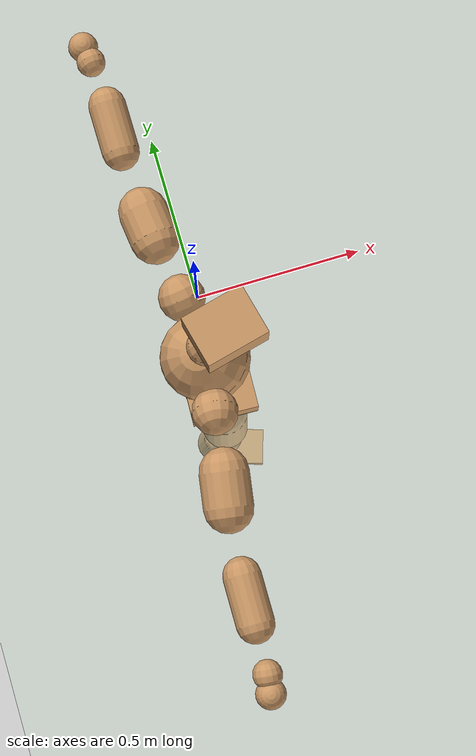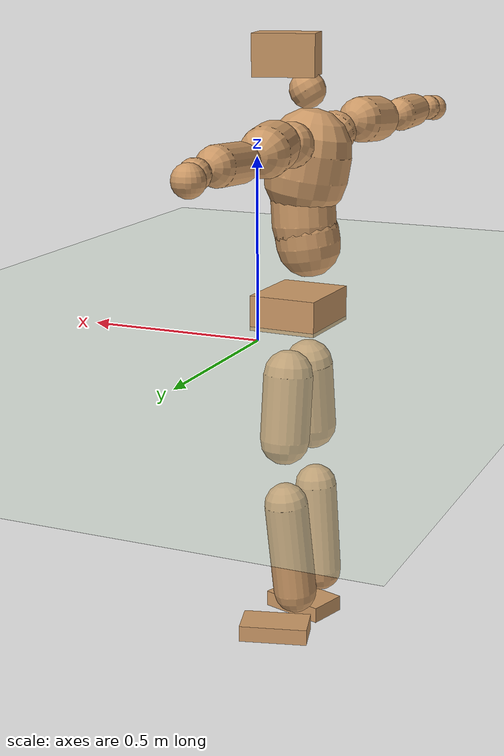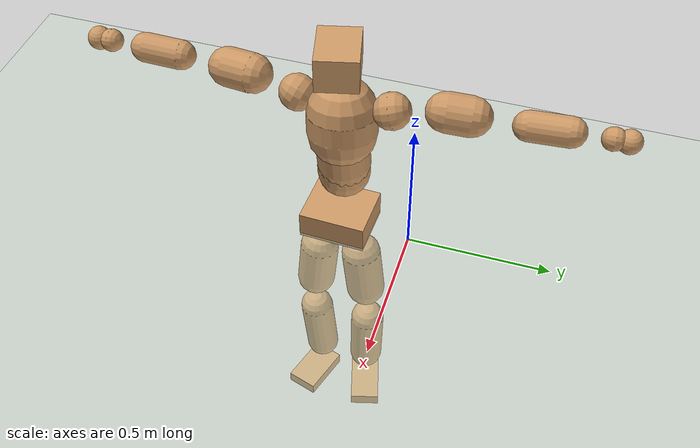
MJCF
<mujoco model="humanoid">
  <compiler coordinate="local" angle="radian"/>
  <default>
    <joint damping="0.0" armature="0.01" stiffness="0.0" limited="true"/>
    <geom conaffinity="1" condim="3" contype="7" margin="0.001" rgba="0.8 0.6 .4 1"/>
  </default>
  <asset>
    <texture type="skybox" builtin="gradient" rgb1=".4 .5 .6" rgb2="0 0 0" width="100" height="100"/>
    <texture builtin="flat" height="1278" mark="cross" markrgb="1 1 1" name="texgeom" random="0.01" rgb1="0.8 0.6 0.4" rgb2="0.8 0.6 0.4" type="cube" width="127"/>
    <texture builtin="checker" height="100" name="texplane" rgb1="0 0 0" rgb2="0.8 0.8 0.8" type="2d" width="100"/>
    <material name="MatPlane" reflectance="0.5" shininess="1" specular="1" texrepeat="60 60" texture="texplane"/>
    <material name="geom" texture="texgeom" texuniform="true"/>
  </asset>
  <worldbody>
    <light cutoff="100" diffuse="1 1 1" dir="-0 0 -1.3" directional="true" exponent="1" pos="0 0 1.3" specular=".1 .1 .1"/>
    <geom conaffinity="1" condim="3" name="floor" pos="0 0 0" rgba="0.8 0.9 0.8 1" size="100 100 .2" type="plane" material="MatPlane"/>
    <body name="Pelvis" pos="-0.0029 -0.2544 0.0449">
      <freejoint name="Pelvis"/>
      <geom type="box" contype="1" conaffinity="1" density="5359.374891" pos="-0.0127 0.0005 -0.0083" size="0.0978 0.1171 0.0501" quat="0.9998 0.0000 0.0000 -0.0190" name="Pelvis"/>
      <body name="L_Hip" pos="-0.0144 0.0673 -0.0856">
        <joint name="L_Hip_x" type="hinge" pos="0 0 0" axis="1 0 0" stiffness="1600" damping="160" armature="0.02" range="-180.0000 180.0000"/>
        <joint name="L_Hip_y" type="hinge" pos="0 0 0" axis="0 1 0" stiffness="1600" damping="160" armature="0.02" range="-180.0000 180.0000"/>
        <joint name="L_Hip_z" type="hinge" pos="0 0 0" axis="0 0 1" stiffness="1600" damping="160" armature="0.02" range="-180.0000 180.0000"/>
        <geom type="capsule" contype="1" conaffinity="1" density="2040.816327" size="0.0709" fromto="0.0010 0.0107 -0.1004 0.0029 0.0311 -0.2905" name="L_Hip"/>
        <body name="L_Knee" pos="0.0039 0.0419 -0.3908">
          <joint name="L_Knee_x" type="hinge" pos="0 0 0" axis="1 0 0" stiffness="1600" damping="160" armature="0.02" range="-180.0000 180.0000"/>
          <joint name="L_Knee_y" type="hinge" pos="0 0 0" axis="0 1 0" stiffness="1600" damping="160" armature="0.02" range="-180.0000 180.0000"/>
          <joint name="L_Knee_z" type="hinge" pos="0 0 0" axis="0 0 1" stiffness="1600" damping="160" armature="0.02" range="-180.0000 180.0000"/>
          <geom type="capsule" contype="1" conaffinity="1" density="1234.567901" size="0.0628" fromto="-0.0086 -0.0037 -0.0924 -0.0338 -0.0146 -0.3634" name="L_Knee"/>
          <body name="L_Ankle" pos="-0.0424 -0.0183 -0.4558">
            <joint name="L_Ankle_x" type="hinge" pos="0 0 0" axis="1 0 0" stiffness="1600" damping="160" armature="0.02" range="-180.0000 180.0000"/>
            <joint name="L_Ankle_y" type="hinge" pos="0 0 0" axis="0 1 0" stiffness="1600" damping="160" armature="0.02" range="-180.0000 180.0000"/>
            <joint name="L_Ankle_z" type="hinge" pos="0 0 0" axis="0 0 1" stiffness="1600" damping="160" armature="0.02" range="-180.0000 180.0000"/>
            <geom type="box" contype="1" conaffinity="1" density="999.999994" pos="0.0664 0.0182 -0.0320" size="0.0998 0.0551 0.0237" quat="0.9911 0.0000 0.0000 0.1334" name="L_Ankle"/>
            <body name="L_Toe" pos="0.1328 0.0364 -0.0639">
              <joint name="L_Toe_x" type="hinge" pos="0 0 0" axis="1 0 0" stiffness="1000" damping="100" armature="0.02" range="-180.0000 180.0000"/>
              <joint name="L_Toe_y" type="hinge" pos="0 0 0" axis="0 1 0" stiffness="1000" damping="100" armature="0.02" range="-180.0000 180.0000"/>
              <joint name="L_Toe_z" type="hinge" pos="0 0 0" axis="0 0 1" stiffness="1000" damping="100" armature="0.02" range="-180.0000 180.0000"/>
              <geom type="box" contype="1" conaffinity="1" density="8829210.378684" pos="0.0000 0.0000 0.0308" size="0.0012 0.0027 0.0011" quat="0.9904 0.0000 0.0000 0.1384" name="L_Toe"/>
            </body>
          </body>
        </body>
      </body>
      <body name="R_Hip" pos="-0.0099 -0.0693 -0.0932">
        <joint name="R_Hip_x" type="hinge" pos="0 0 0" axis="1 0 0" stiffness="1600" damping="160" armature="0.02" range="-180.0000 180.0000"/>
        <joint name="R_Hip_y" type="hinge" pos="0 0 0" axis="0 1 0" stiffness="1600" damping="160" armature="0.02" range="-180.0000 180.0000"/>
        <joint name="R_Hip_z" type="hinge" pos="0 0 0" axis="0 0 1" stiffness="1600" damping="160" armature="0.02" range="-180.0000 180.0000"/>
        <geom type="capsule" contype="1" conaffinity="1" density="2040.816327" size="0.0704" fromto="-0.0024 -0.0104 -0.0998 -0.0072 -0.0308 -0.2946" name="R_Hip"/>
        <body name="R_Knee" pos="-0.0096 -0.0412 -0.3945">
          <joint name="R_Knee_x" type="hinge" pos="0 0 0" axis="1 0 0" stiffness="1600" damping="160" armature="0.02" range="-180.0000 180.0000"/>
          <joint name="R_Knee_y" type="hinge" pos="0 0 0" axis="0 1 0" stiffness="1600" damping="160" armature="0.02" range="-180.0000 180.0000"/>
          <joint name="R_Knee_z" type="hinge" pos="0 0 0" axis="0 0 1" stiffness="1600" damping="160" armature="0.02" range="-180.0000 180.0000"/>
          <geom type="capsule" contype="1" conaffinity="1" density="1234.567901" size="0.0623" fromto="-0.0079 0.0044 -0.0919 -0.0306 0.0171 -0.3579" name="R_Knee"/>
          <body name="R_Ankle" pos="-0.0384 0.0215 -0.4497">
            <joint name="R_Ankle_x" type="hinge" pos="0 0 0" axis="1 0 0" stiffness="1600" damping="160" armature="0.02" range="-180.0000 180.0000"/>
            <joint name="R_Ankle_y" type="hinge" pos="0 0 0" axis="0 1 0" stiffness="1600" damping="160" armature="0.02" range="-180.0000 180.0000"/>
            <joint name="R_Ankle_z" type="hinge" pos="0 0 0" axis="0 0 1" stiffness="1600" damping="160" armature="0.02" range="-180.0000 180.0000"/>
            <geom type="box" contype="1" conaffinity="1" density="1000.000036" pos="0.0700 -0.0216 -0.0331" size="0.0969 0.059 0.0232" quat="0.9888 0.0000 0.0000 -0.1495" name="R_Ankle"/>
            <body name="R_Toe" pos="0.1399 -0.0433 -0.0663">
              <joint name="R_Toe_x" type="hinge" pos="0 0 0" axis="1 0 0" stiffness="1000" damping="100" armature="0.02" range="-180.0000 180.0000"/>
              <joint name="R_Toe_y" type="hinge" pos="0 0 0" axis="0 1 0" stiffness="1000" damping="100" armature="0.02" range="-180.0000 180.0000"/>
              <joint name="R_Toe_z" type="hinge" pos="0 0 0" axis="0 0 1" stiffness="1000" damping="100" armature="0.02" range="-180.0000 180.0000"/>
              <geom type="box" contype="1" conaffinity="1" density="8188718.081431" pos="0.0000 0.0000 0.0326" size="0.0013 0.0028 0.0011" quat="0.9900 0.0000 0.0000 -0.1411" name="R_Toe"/>
            </body>
          </body>
        </body>
      </body>
      <body name="Torso" pos="-0.0518 0.0049 0.1289">
        <joint name="Torso_x" type="hinge" pos="0 0 0" axis="1 0 0" stiffness="2000" damping="200" armature="0.02" range="-180.0000 180.0000"/>
        <joint name="Torso_y" type="hinge" pos="0 0 0" axis="0 1 0" stiffness="2000" damping="200" armature="0.02" range="-180.0000 180.0000"/>
        <joint name="Torso_z" type="hinge" pos="0 0 0" axis="0 0 1" stiffness="2000" damping="200" armature="0.02" range="-180.0000 180.0000"/>
        <geom type="capsule" contype="1" conaffinity="1" density="2040.816327" size="0.0909" fromto="0.0145 0.0026 0.0897 0.0079 0.0014 0.0492" name="Torso"/>
        <body name="Spine" pos="0.0224 0.004 0.1388">
          <joint name="Spine_x" type="hinge" pos="0 0 0" axis="1 0 0" stiffness="2000" damping="200" armature="0.02" range="-180.0000 180.0000"/>
          <joint name="Spine_y" type="hinge" pos="0 0 0" axis="0 1 0" stiffness="2000" damping="200" armature="0.02" range="-180.0000 180.0000"/>
          <joint name="Spine_z" type="hinge" pos="0 0 0" axis="0 0 1" stiffness="2000" damping="200" armature="0.02" range="-180.0000 180.0000"/>
          <geom type="capsule" contype="1" conaffinity="1" density="2040.816327" size="0.0915" fromto="0.0071 -0.0040 0.0911 -0.0026 0.0015 -0.0335" name="Spine"/>
          <body name="Chest" pos="0.0045 -0.0025 0.0576">
            <joint name="Chest_x" type="hinge" pos="0 0 0" axis="1 0 0" stiffness="2000" damping="200" armature="0.02" range="-180.0000 180.0000"/>
            <joint name="Chest_y" type="hinge" pos="0 0 0" axis="0 1 0" stiffness="2000" damping="200" armature="0.02" range="-180.0000 180.0000"/>
            <joint name="Chest_z" type="hinge" pos="0 0 0" axis="0 0 1" stiffness="2000" damping="200" armature="0.02" range="-180.0000 180.0000"/>
            <geom type="capsule" contype="1" conaffinity="1" density="2040.816327" size="0.1185" fromto="-0.0185 -0.0061 0.1168 -0.0071 -0.0023 0.0448" name="Chest"/>
            <body name="Neck" pos="-0.0369 -0.0149 0.2358">
              <joint name="Neck_x" type="hinge" pos="0 0 0" axis="1 0 0" stiffness="1000" damping="100" armature="0.02" range="-180.0000 180.0000"/>
              <joint name="Neck_y" type="hinge" pos="0 0 0" axis="0 1 0" stiffness="1000" damping="100" armature="0.02" range="-180.0000 180.0000"/>
              <joint name="Neck_z" type="hinge" pos="0 0 0" axis="0 0 1" stiffness="1000" damping="100" armature="0.02" range="-180.0000 180.0000"/>
              <geom type="capsule" contype="1" conaffinity="1" density="1000" size="0.0507" fromto="0.0271 0.0059 0.0464 0.0281 0.0061 0.0481" name="Neck"/>
              <body name="Head" pos="0.0552 0.0119 0.0945">
                <joint name="Head_x" type="hinge" pos="0 0 0" axis="1 0 0" stiffness="1000" damping="100" armature="0.02" range="-180.0000 180.0000"/>
                <joint name="Head_y" type="hinge" pos="0 0 0" axis="0 1 0" stiffness="1000" damping="100" armature="0.02" range="-180.0000 180.0000"/>
                <joint name="Head_z" type="hinge" pos="0 0 0" axis="0 0 1" stiffness="1000" damping="100" armature="0.02" range="-180.0000 180.0000"/>
                <geom type="box" contype="1" conaffinity="1" density="2249.999945" pos="0.0286 0.0070 0.0482" size="0.0867 0.0696 0.0584" quat="0.9929 0.0000 0.0000 0.1192" name="Head"/>
              </body>
            </body>
            <body name="L_Thorax" pos="-0.0161 0.0846 0.1259">
              <joint name="L_Thorax_x" type="hinge" pos="0 0 0" axis="1 0 0" stiffness="1000" damping="100" armature="0.02" range="-180.0000 180.0000"/>
              <joint name="L_Thorax_y" type="hinge" pos="0 0 0" axis="0 1 0" stiffness="1000" damping="100" armature="0.02" range="-180.0000 180.0000"/>
              <joint name="L_Thorax_z" type="hinge" pos="0 0 0" axis="0 0 1" stiffness="1000" damping="100" armature="0.02" range="-180.0000 180.0000"/>
              <geom type="capsule" contype="1" conaffinity="1" density="1000" size="0.0632" fromto="-0.0135 0.0714 0.0251 -0.0138 0.0733 0.0257" name="L_Thorax"/>
              <body name="L_Shoulder" pos="-0.0273 0.1446 0.0508">
                <joint name="L_Shoulder_x" type="hinge" pos="0 0 0" axis="1 0 0" stiffness="1000" damping="100" armature="0.02" range="-720.0000 720.0000"/>
                <joint name="L_Shoulder_y" type="hinge" pos="0 0 0" axis="0 1 0" stiffness="1000" damping="100" armature="0.02" range="-720.0000 720.0000"/>
                <joint name="L_Shoulder_z" type="hinge" pos="0 0 0" axis="0 0 1" stiffness="1000" damping="100" armature="0.02" range="-720.0000 720.0000"/>
                <geom type="capsule" contype="1" conaffinity="1" density="1000" size="0.0669" fromto="-0.0115 0.0960 -0.0070 -0.0215 0.1794 -0.0132" name="L_Shoulder"/>
                <body name="L_Elbow" pos="-0.033 0.2754 -0.0202">
                  <joint name="L_Elbow_x" type="hinge" pos="0 0 0" axis="1 0 0" stiffness="1000" damping="100" armature="0.02" range="-720.0000 720.0000"/>
                  <joint name="L_Elbow_y" type="hinge" pos="0 0 0" axis="0 1 0" stiffness="1000" damping="100" armature="0.02" range="-720.0000 720.0000"/>
                  <joint name="L_Elbow_z" type="hinge" pos="0 0 0" axis="0 0 1" stiffness="1000" damping="100" armature="0.02" range="-720.0000 720.0000"/>
                  <geom type="capsule" contype="1" conaffinity="1" density="1000" size="0.0507" fromto="-0.0005 0.0805 0.0050 -0.0012 0.2136 0.0133" name="L_Elbow"/>
                  <body name="L_Wrist" pos="-0.0017 0.2941 0.0183">
                    <joint name="L_Wrist_x" type="hinge" pos="0 0 0" axis="1 0 0" stiffness="600" damping="60" armature="0.02" range="-180.0000 180.0000"/>
                    <joint name="L_Wrist_y" type="hinge" pos="0 0 0" axis="0 1 0" stiffness="600" damping="60" armature="0.02" range="-180.0000 180.0000"/>
                    <joint name="L_Wrist_z" type="hinge" pos="0 0 0" axis="0 0 1" stiffness="600" damping="60" armature="0.02" range="-180.0000 180.0000"/>
                    <geom type="capsule" contype="1" conaffinity="1" density="1000" size="0.0389" fromto="-0.0086 0.0481 -0.0061 -0.0089 0.0501 -0.0063" name="L_Wrist"/>
                    <body name="L_Hand" pos="-0.0175 0.0982 -0.0124">
                      <joint name="L_Hand_x" type="hinge" pos="0 0 0" axis="1 0 0" stiffness="600" damping="60" armature="0.02" range="-180.0000 180.0000"/>
                      <joint name="L_Hand_y" type="hinge" pos="0 0 0" axis="0 1 0" stiffness="600" damping="60" armature="0.02" range="-180.0000 180.0000"/>
                      <joint name="L_Hand_z" type="hinge" pos="0 0 0" axis="0 0 1" stiffness="600" damping="60" armature="0.02" range="-180.0000 180.0000"/>
                      <geom type="sphere" contype="1" conaffinity="1" density="1000" size="0.0404" pos="0.0000 0.0000 0.0000" name="L_Hand"/>
                    </body>
                  </body>
                </body>
              </body>
            </body>
            <body name="R_Thorax" pos="-0.0239 -0.0951 0.1232">
              <joint name="R_Thorax_x" type="hinge" pos="0 0 0" axis="1 0 0" stiffness="1000" damping="100" armature="0.02" range="-180.0000 180.0000"/>
              <joint name="R_Thorax_y" type="hinge" pos="0 0 0" axis="0 1 0" stiffness="1000" damping="100" armature="0.02" range="-180.0000 180.0000"/>
              <joint name="R_Thorax_z" type="hinge" pos="0 0 0" axis="0 0 1" stiffness="1000" damping="100" armature="0.02" range="-180.0000 180.0000"/>
              <geom type="capsule" contype="1" conaffinity="1" density="1000" size="0.0625" fromto="-0.0070 -0.0651 0.0268 -0.0072 -0.0669 0.0275" name="R_Thorax"/>
              <body name="R_Shoulder" pos="-0.0142 -0.1319 0.0543">
                <joint name="R_Shoulder_x" type="hinge" pos="0 0 0" axis="1 0 0" stiffness="1000" damping="100" armature="0.02" range="-720.0000 720.0000"/>
                <joint name="R_Shoulder_y" type="hinge" pos="0 0 0" axis="0 1 0" stiffness="1000" damping="100" armature="0.02" range="-720.0000 720.0000"/>
                <joint name="R_Shoulder_z" type="hinge" pos="0 0 0" axis="0 0 1" stiffness="1000" damping="100" armature="0.02" range="-720.0000 720.0000"/>
                <geom type="capsule" contype="1" conaffinity="1" density="1000" size="0.0672" fromto="-0.0151 -0.0959 -0.0053 -0.0297 -0.1885 -0.0105" name="R_Shoulder"/>
                <body name="R_Elbow" pos="-0.0449 -0.2844 -0.0158">
                  <joint name="R_Elbow_x" type="hinge" pos="0 0 0" axis="1 0 0" stiffness="1000" damping="100" armature="0.02" range="-720.0000 720.0000"/>
                  <joint name="R_Elbow_y" type="hinge" pos="0 0 0" axis="0 1 0" stiffness="1000" damping="100" armature="0.02" range="-720.0000 720.0000"/>
                  <joint name="R_Elbow_z" type="hinge" pos="0 0 0" axis="0 0 1" stiffness="1000" damping="100" armature="0.02" range="-720.0000 720.0000"/>
                  <geom type="capsule" contype="1" conaffinity="1" density="1000" size="0.0508" fromto="-0.0008 -0.0808 0.0010 -0.0021 -0.2102 0.0027" name="R_Elbow"/>
                  <body name="R_Wrist" pos="-0.0029 -0.291 0.0037">
                    <joint name="R_Wrist_x" type="hinge" pos="0 0 0" axis="1 0 0" stiffness="600" damping="60" armature="0.02" range="-180.0000 180.0000"/>
                    <joint name="R_Wrist_y" type="hinge" pos="0 0 0" axis="0 1 0" stiffness="600" damping="60" armature="0.02" range="-180.0000 180.0000"/>
                    <joint name="R_Wrist_z" type="hinge" pos="0 0 0" axis="0 0 1" stiffness="600" damping="60" armature="0.02" range="-180.0000 180.0000"/>
                    <geom type="capsule" contype="1" conaffinity="1" density="1000" size="0.0392" fromto="-0.0055 -0.0486 -0.0050 -0.0057 -0.0506 -0.0052" name="R_Wrist"/>
                    <body name="R_Hand" pos="-0.0113 -0.0992 -0.0102">
                      <joint name="R_Hand_x" type="hinge" pos="0 0 0" axis="1 0 0" stiffness="600" damping="60" armature="0.02" range="-180.0000 180.0000"/>
                      <joint name="R_Hand_y" type="hinge" pos="0 0 0" axis="0 1 0" stiffness="600" damping="60" armature="0.02" range="-180.0000 180.0000"/>
                      <joint name="R_Hand_z" type="hinge" pos="0 0 0" axis="0 0 1" stiffness="600" damping="60" armature="0.02" range="-180.0000 180.0000"/>
                      <geom type="sphere" contype="1" conaffinity="1" density="1000" size="0.0404" pos="0.0000 0.0000 0.0000" name="R_Hand"/>
                    </body>
                  </body>
                </body>
              </body>
            </body>
          </body>
        </body>
      </body>
    </body>
  </worldbody>
  <actuator>
    <motor name="L_Hip_x" joint="L_Hip_x" gear="500"/>
    <motor name="L_Hip_y" joint="L_Hip_y" gear="500"/>
    <motor name="L_Hip_z" joint="L_Hip_z" gear="500"/>
    <motor name="L_Knee_x" joint="L_Knee_x" gear="500"/>
    <motor name="L_Knee_y" joint="L_Knee_y" gear="500"/>
    <motor name="L_Knee_z" joint="L_Knee_z" gear="500"/>
    <motor name="L_Ankle_x" joint="L_Ankle_x" gear="500"/>
    <motor name="L_Ankle_y" joint="L_Ankle_y" gear="500"/>
    <motor name="L_Ankle_z" joint="L_Ankle_z" gear="500"/>
    <motor name="L_Toe_x" joint="L_Toe_x" gear="500"/>
    <motor name="L_Toe_y" joint="L_Toe_y" gear="500"/>
    <motor name="L_Toe_z" joint="L_Toe_z" gear="500"/>
    <motor name="R_Hip_x" joint="R_Hip_x" gear="500"/>
    <motor name="R_Hip_y" joint="R_Hip_y" gear="500"/>
    <motor name="R_Hip_z" joint="R_Hip_z" gear="500"/>
    <motor name="R_Knee_x" joint="R_Knee_x" gear="500"/>
    <motor name="R_Knee_y" joint="R_Knee_y" gear="500"/>
    <motor name="R_Knee_z" joint="R_Knee_z" gear="500"/>
    <motor name="R_Ankle_x" joint="R_Ankle_x" gear="500"/>
    <motor name="R_Ankle_y" joint="R_Ankle_y" gear="500"/>
    <motor name="R_Ankle_z" joint="R_Ankle_z" gear="500"/>
    <motor name="R_Toe_x" joint="R_Toe_x" gear="500"/>
    <motor name="R_Toe_y" joint="R_Toe_y" gear="500"/>
    <motor name="R_Toe_z" joint="R_Toe_z" gear="500"/>
    <motor name="Torso_x" joint="Torso_x" gear="500"/>
    <motor name="Torso_y" joint="Torso_y" gear="500"/>
    <motor name="Torso_z" joint="Torso_z" gear="500"/>
    <motor name="Spine_x" joint="Spine_x" gear="500"/>
    <motor name="Spine_y" joint="Spine_y" gear="500"/>
    <motor name="Spine_z" joint="Spine_z" gear="500"/>
    <motor name="Chest_x" joint="Chest_x" gear="500"/>
    <motor name="Chest_y" joint="Chest_y" gear="500"/>
    <motor name="Chest_z" joint="Chest_z" gear="500"/>
    <motor name="Neck_x" joint="Neck_x" gear="500"/>
    <motor name="Neck_y" joint="Neck_y" gear="500"/>
    <motor name="Neck_z" joint="Neck_z" gear="500"/>
    <motor name="Head_x" joint="Head_x" gear="500"/>
    <motor name="Head_y" joint="Head_y" gear="500"/>
    <motor name="Head_z" joint="Head_z" gear="500"/>
    <motor name="L_Thorax_x" joint="L_Thorax_x" gear="500"/>
    <motor name="L_Thorax_y" joint="L_Thorax_y" gear="500"/>
    <motor name="L_Thorax_z" joint="L_Thorax_z" gear="500"/>
    <motor name="L_Shoulder_x" joint="L_Shoulder_x" gear="500"/>
    <motor name="L_Shoulder_y" joint="L_Shoulder_y" gear="500"/>
    <motor name="L_Shoulder_z" joint="L_Shoulder_z" gear="500"/>
    <motor name="L_Elbow_x" joint="L_Elbow_x" gear="500"/>
    <motor name="L_Elbow_y" joint="L_Elbow_y" gear="500"/>
    <motor name="L_Elbow_z" joint="L_Elbow_z" gear="500"/>
    <motor name="L_Wrist_x" joint="L_Wrist_x" gear="500"/>
    <motor name="L_Wrist_y" joint="L_Wrist_y" gear="500"/>
    <motor name="L_Wrist_z" joint="L_Wrist_z" gear="500"/>
    <motor name="L_Hand_x" joint="L_Hand_x" gear="500"/>
    <motor name="L_Hand_y" joint="L_Hand_y" gear="500"/>
    <motor name="L_Hand_z" joint="L_Hand_z" gear="500"/>
    <motor name="R_Thorax_x" joint="R_Thorax_x" gear="500"/>
    <motor name="R_Thorax_y" joint="R_Thorax_y" gear="500"/>
    <motor name="R_Thorax_z" joint="R_Thorax_z" gear="500"/>
    <motor name="R_Shoulder_x" joint="R_Shoulder_x" gear="500"/>
    <motor name="R_Shoulder_y" joint="R_Shoulder_y" gear="500"/>
    <motor name="R_Shoulder_z" joint="R_Shoulder_z" gear="500"/>
    <motor name="R_Elbow_x" joint="R_Elbow_x" gear="500"/>
    <motor name="R_Elbow_y" joint="R_Elbow_y" gear="500"/>
    <motor name="R_Elbow_z" joint="R_Elbow_z" gear="500"/>
    <motor name="R_Wrist_x" joint="R_Wrist_x" gear="500"/>
    <motor name="R_Wrist_y" joint="R_Wrist_y" gear="500"/>
    <motor name="R_Wrist_z" joint="R_Wrist_z" gear="500"/>
    <motor name="R_Hand_x" joint="R_Hand_x" gear="500"/>
    <motor name="R_Hand_y" joint="R_Hand_y" gear="500"/>
    <motor name="R_Hand_z" joint="R_Hand_z" gear="500"/>
  </actuator>
  <contact>
    <exclude body1="Torso" body2="Chest"/>
    <exclude body1="Head" body2="Chest"/>
    <exclude body1="R_Knee" body2="R_Toe"/>
    <exclude body1="R_Knee" body2="L_Ankle"/>
    <exclude body1="R_Knee" body2="L_Toe"/>
    <exclude body1="L_Knee" body2="L_Toe"/>
    <exclude body1="L_Knee" body2="R_Ankle"/>
    <exclude body1="L_Knee" body2="R_Toe"/>
    <exclude body1="L_Shoulder" body2="Chest"/>
    <exclude body1="R_Shoulder" body2="Chest"/>
  </contact>
  <sensor/>
  <size njmax="700" nconmax="700"/>
</mujoco>
